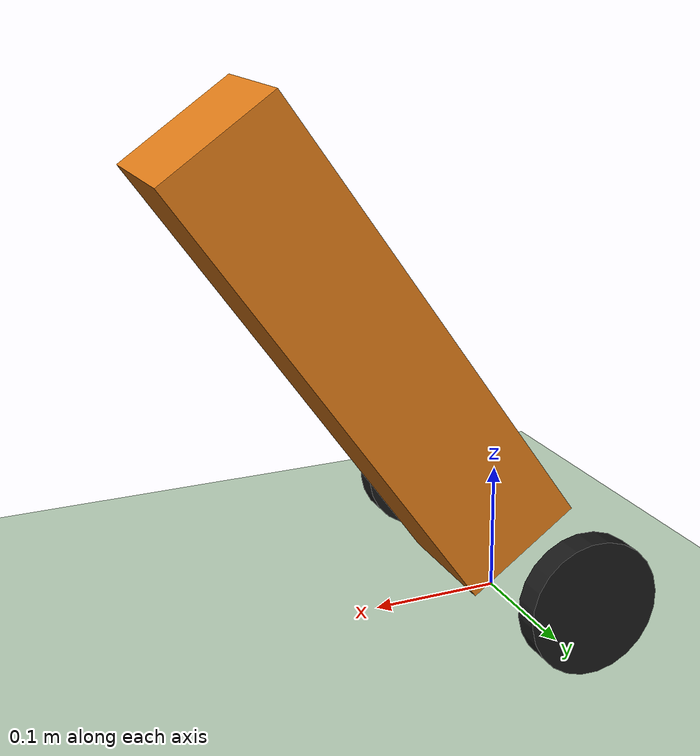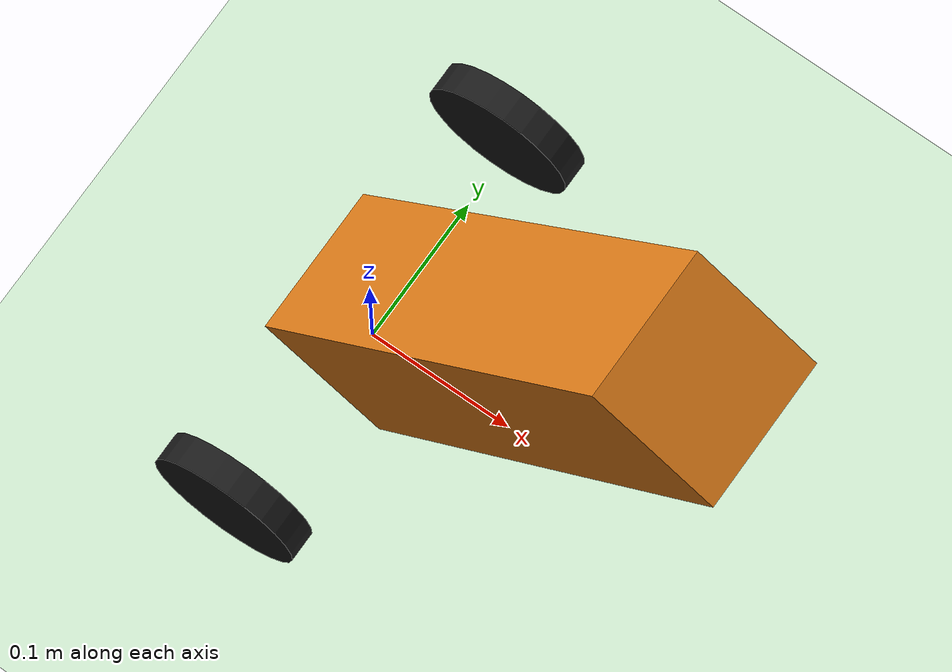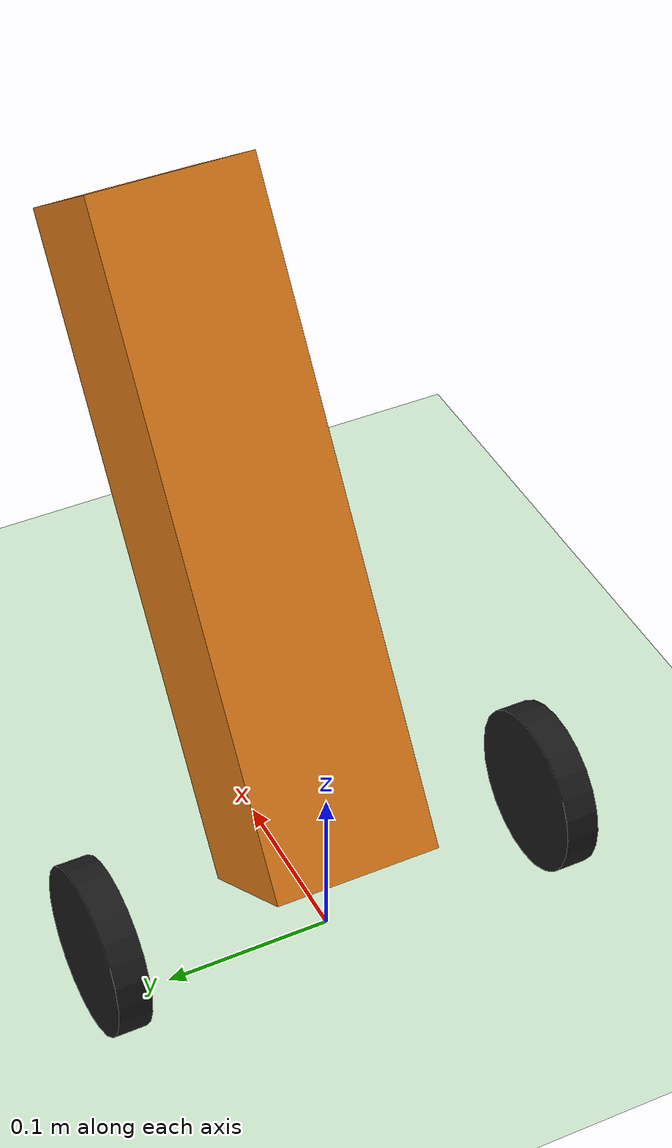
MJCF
<mujoco model="balance_bot">
  <option timestep="0.005" gravity="0 0 -9.81"/>

  <visual>
    <rgba haze="0.15 0.25 0.35 1"/>
    <quality shadowsize="2048"/>
  </visual>

  <worldbody>
    <light pos="0 0 3" dir="0 0 -1" directional="true"/>

    <geom name="floor" type="plane" size="0 0 0.05" rgba=".8 .9 .8 1" euler="0 0 0"/>

    <body name="robot" pos="0 0 0.05" euler="0 35 0">
      <joint name="slide_x" type="slide" axis="1 0 0" damping="0.1"/>
      <joint name="pitch" type="hinge" axis="0 1 0" pos="0 0 0"/>

      <camera name="chase" mode="fixed" pos="-0.8 0 0.4" xyaxes="0 -1 0 0 0 1"/>

      <geom type="box" size="0.05 0.05 0.2" pos="0 0 0.2" rgba="0.9 0.5 0.1 1" mass="1.5"/>

      <body name="wheel_r" pos="0 -0.15 0">
        <joint name="motor_r" axis="0 1 0"/>
        <geom type="cylinder" size="0.05 0.02" rgba="0.1 0.1 0.1 1" mass="0.5" fromto="0 0 0 0 0.02 0"/>
      </body>

      <body name="wheel_l" pos="0 0.15 0">
        <joint name="motor_l" axis="0 1 0"/>
        <geom type="cylinder" size="0.05 0.02" rgba="0.1 0.1 0.1 1" mass="0.5" fromto="0 0 0 0 -0.02 0"/>
      </body>
    </body>

    <camera name="tracking_cam" mode="track" target="robot" pos="-1.5 0 1" xyaxes="0 -1 0 0 0 1"/>

  </worldbody>

  <actuator>
    <motor name="left" joint="motor_l" gear="0.25"/>
    <motor name="right" joint="motor_r" gear="0.25"/>
  </actuator>
</mujoco>
